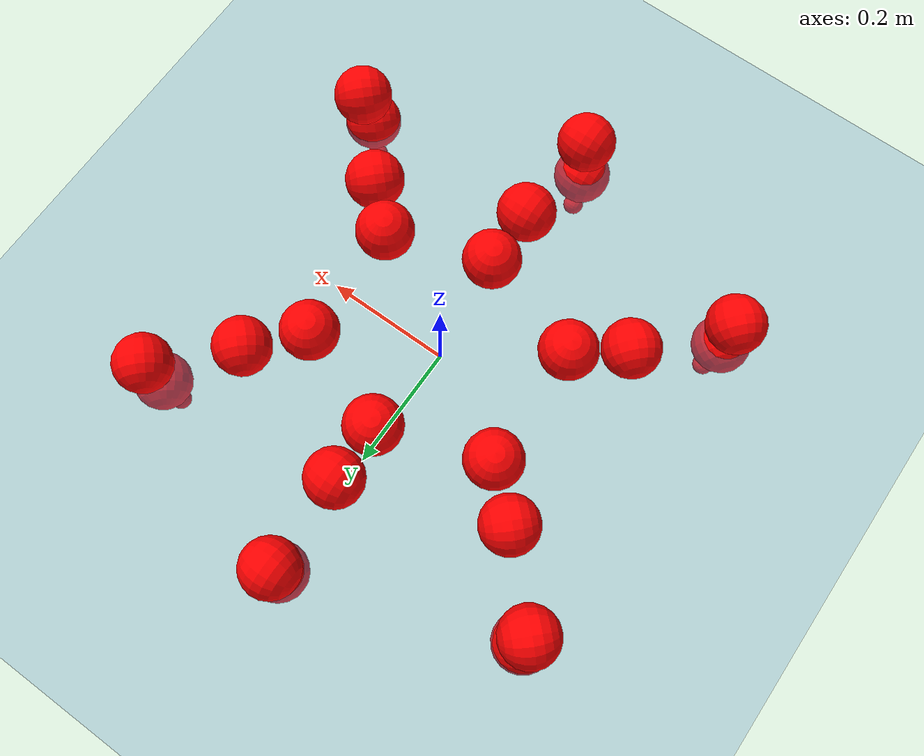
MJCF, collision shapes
<mujoco model="Golem">
  <compiler angle="radian" assetdir="assets" balanceinertia="true" inertiafromgeom="false"/>

  <option timestep="0.005" density="1.2" viscosity="2e-05"/>

  <size nkey="1"/>

  <visual>
    <quality shadowsize="8192"/>
    <map shadowclip="0.5"/>
  </visual>

  <default>
    <default class="/">
      <joint armature="0.01" damping="0.01" frictionloss="0.01"/>
      <geom contype="0" conaffinity="0" group="1" solref="-1000 -80"/>
      <site size="0.01 0.005 0.005" group="5"/>
      <general forcelimited="true" biastype="affine" gainprm="25" biasprm="0 -25 -0.5"/>
      <default class="visual">
        <geom type="mesh" group="2"/>
      </default>
      <default class="collision">
        <geom group="3"/>
      </default>
      <default class="foot">
        <geom size="0.01 0 0" condim="6" group="4" priority="1" solimp="0.015 1 0.01"/>
      </default>
      <default class="reward_collision_sphere">
        <geom group="5" rgba="1 0 0 1"/>
      </default>
    </default>
  </default>

  <asset>
    <texture type="skybox" colorspace="auto" name="//unnamed_texture_0" builtin="gradient" rgb1="0.95 0.95 0.95" rgb2="0.95 0.95 0.95" width="100" height="600"/>
    <texture type="2d" colorspace="auto" name="texplane" builtin="checker" rgb1="0.345 0.575 0.748" rgb2="0.345 0.575 0.748" markrgb="1 1 1" width="512" height="512"/>
    <material name="MatPlane" class="/" texture="texplane" texuniform="true" texrepeat="2 2" specular="0.9"/>
    <mesh name="body" class="/" file="body.stl" scale="0.001 0.001 0.001"/>
    <mesh name="coxa" class="/" file="coxa.stl" scale="0.001 0.001 0.001"/>
    <mesh name="femur" class="/" file="femur.stl" scale="0.001 0.001 0.001"/>
    <mesh name="tibia" class="/" file="tibia.stl" scale="0.001 0.001 0.001"/>
    <mesh name="tarsus" class="/" file="tarsus.stl" scale="0.001 0.001 0.001"/>
  </asset>

  <worldbody>
    <geom name="floor" class="/" size="100 100 0.125" type="plane" group="0" material="MatPlane"/>
    <light name="toplight_shadow" class="/" pos="0 0 5" dir="0.0990148 0.0990148 -0.990148" type="directional" ambient="0.04 0.04 0.04" diffuse="0.55 0.55 0.55" specular="0.12 0.12 0.12"/>
    <light name="toplight_fill" class="/" pos="0 0 5" dir="0.0990148 0.0990148 -0.990148" type="directional" castshadow="false" ambient="0.04 0.04 0.04" diffuse="0.3 0.3 0.3" specular="0.08 0.08 0.08"/>
    <body name="trunk" pos="0.00518796 4.1068e-05 0.00333836" quat="1 0.000392873 -0.000156151 5.01898e-05">
      <inertial pos="-0.000822712 0.000590766 0.00843205" quat="0.999014 0.00760045 -0.0225123 0.0375051" mass="5.80798" diaginertia="0.0141031 0.058256 0.00974714"/>
      <joint name="//unnamed_joint_0" type="free"/>
      <geom name="//unnamed_geom_1" class="/" pos="0 0 0.0635102" quat="1 0 0 0" type="mesh" rgba="0.9 0.9 0.9 1" mesh="body"/>
      <site name="imu" class="/" pos="0.124457 0.00613667 0.113929" size="0.011583"/>
      <camera name="track" class="/" pos="0 -2.83787 0" quat="0.707107 0.707107 0 0" mode="trackcom"/>
      <camera name="ego_camera" class="/" pos="0.138271 0 0.0992347" quat="-0.5 -0.5 0.5 0.5"/>
      <body name="coxa_RR" pos="-0.189113 -0.124245 0.0691153" quat="0.382935 -0.000445394 -0.000800017 -0.923775">
        <inertial pos="0.00156644 0.000378712 0.00244752" quat="0.999728 -0.00439796 -0.0227717 -0.00250663" mass="0.333829" diaginertia="0.0132489 0.060418 0.0102975"/>
        <joint name="coxa_joint_RR" class="/" pos="0 0 0" axis="-0.0198204 0.00185548 -0.999802" range="-3.08948 2.96271" armature="0.0132562" damping="0.00335231" frictionloss="0.0138406"/>
        <geom name="//unnamed_geom_2" class="/" type="mesh" rgba="0.2 0.2 0.2 1" mesh="coxa"/>
        <geom name="//unnamed_geom_3" class="reward_collision_sphere" size="0.0463321" pos="-0.0319087 0 0"/>
        <body name="femur_RR" pos="0.0626631 -0.0106712 -0.00934857" quat="0.499827 -0.499684 0.500531 0.499958">
          <inertial pos="0.0018513 -0.00865749 -0.0101458" quat="0.999998 -0.000997895 -0.00112132 0.00149151" mass="0.310688" diaginertia="0.0129094 0.0579294 0.00878955"/>
          <joint name="femur_joint_RR" class="/" pos="0 0 0" axis="-0.00107989 0.00164321 -0.999998" stiffness="0.00180226" range="-3.12529 3.14823" armature="0.0109774" damping="0" frictionloss="0.00560577"/>
          <geom name="//unnamed_geom_4" class="/" type="mesh" rgba="0.9 0.9 0.9 1" mesh="femur"/>
          <geom name="//unnamed_geom_5" class="reward_collision_sphere" size="0.0463321"/>
          <body name="tibia_RR" pos="-0.00301241 -0.162139 0.0102657" quat="0.000639789 0.999999 -7.72474e-05 -0.00076701">
            <inertial pos="-0.00370473 0.00921179 -0.00266441" quat="0.999968 -0.00159741 -0.00171901 0.00763112" mass="0.303221" diaginertia="0.0140315 0.0592071 0.00973108"/>
            <joint name="tibia_joint_RR" class="/" pos="0 0 0" axis="0.0109757 0.00453867 0.999929" range="-3.14206 3.14678" armature="0.0126031" damping="0" frictionloss="0.0142383"/>
            <geom name="//unnamed_geom_6" class="/" type="mesh" rgba="0.2 0.2 0.2 1" mesh="tibia"/>
            <geom name="//unnamed_geom_7" class="reward_collision_sphere" size="0.0463321"/>
            <body name="tarsus_RR" pos="0.0976849 0.002154 0.000709113" quat="1 -0.000183385 0.000775034 0.000293752">
              <inertial pos="0.0684436 0.00275036 -0.000853823" quat="0.506824 0.50097 0.484156 0.507692" mass="0.294515" diaginertia="0.0124628 0.0591069 0.0099411"/>
              <joint name="tarsus_joint_RR" class="/" pos="0 0 0" axis="-0.00315794 0.000399014 0.999995" range="-2.93877 2.92811" armature="0.0127233" damping="0" frictionloss="0.0126544"/>
              <geom name="//unnamed_geom_8" class="/" type="mesh" rgba="0.9 0.9 0.9 1" mesh="tarsus"/>
              <geom name="foot_1" class="foot" size="0.00950676" pos="0.119126 0 0" quat="0 -0.707107 0 0.707107"/>
              <geom name="//unnamed_geom_10" class="reward_collision_sphere" size="0.0463321"/>
              <geom name="//unnamed_geom_11" class="reward_collision_sphere" size="0.0173745" pos="0.11434 0 0"/>
              <site name="foot_1" class="foot" pos="0.119126 0 0" quat="0 -0.707107 0 0.707107" size="0.011583"/>
            </body>
          </body>
        </body>
      </body>
      <body name="coxa_RM" pos="0.00878395 -0.188162 0.0656004" quat="0.707816 0.000702113 -0.000586795 -0.706396">
        <inertial pos="0.00213783 0.00414159 0.00282805" quat="0.998839 0.0441866 -0.0190875 0.00197497" mass="0.287425" diaginertia="0.0123608 0.057039 0.00858402"/>
        <joint name="coxa_joint_RM" class="/" pos="0 0 0" axis="-0.000533299 -0.00297323 -0.999995" range="-3.14599 3.15549" armature="0.0121141" damping="0.0126762" frictionloss="0.0108085"/>
        <geom name="//unnamed_geom_12" class="/" type="mesh" rgba="0.2 0.2 0.2 1" mesh="coxa"/>
        <geom name="//unnamed_geom_13" class="reward_collision_sphere" size="0.0463321" pos="-0.0319087 0 0"/>
        <body name="femur_RM" pos="0.0608281 -0.000460994 0.0046708" quat="0.499423 -0.502197 0.496781 0.501582">
          <inertial pos="0.0089893 0.00380577 0.0103745" quat="0.999972 0.00521217 0.00535618 0.000548018" mass="0.281514" diaginertia="0.0133571 0.0578355 0.00927046"/>
          <joint name="femur_joint_RM" class="/" pos="0 0 0" axis="-0.0169126 0.00311461 -0.999852" range="-3.14383 2.96556" armature="0.0107056" damping="0.0171286" frictionloss="0.0162601"/>
          <geom name="//unnamed_geom_14" class="/" type="mesh" rgba="0.9 0.9 0.9 1" mesh="femur"/>
          <geom name="//unnamed_geom_15" class="reward_collision_sphere" size="0.0463321"/>
          <body name="tibia_RM" pos="0.00608495 -0.157293 -0.0101248" quat="-0.00143434 0.999999 0.000103474 -0.000578009">
            <inertial pos="0.0005821 -0.000444215 -0.00140496" quat="0.999997 0.00176061 0.000515655 0.00166798" mass="0.310422" diaginertia="0.0124219 0.0533856 0.00955701"/>
            <joint name="tibia_joint_RM" class="/" pos="0 0 0" axis="-0.0180881 -0.0399704 0.999037" stiffness="0.00481098" range="-3.17497 3.29047" armature="0.0108928" damping="0.0228208" frictionloss="0.0100786"/>
            <geom name="//unnamed_geom_16" class="/" type="mesh" rgba="0.2 0.2 0.2 1" mesh="tibia"/>
            <geom name="//unnamed_geom_17" class="reward_collision_sphere" size="0.0463321"/>
            <body name="tarsus_RM" pos="0.099391 -0.00253013 0.00863863" quat="1 3.83092e-05 -0.000305731 -0.000517413">
              <inertial pos="0.0640558 0.00215685 -0.00518066" quat="0.516372 0.500282 0.475213 0.507198" mass="0.304026" diaginertia="0.0126362 0.0564189 0.0106398"/>
              <joint name="tarsus_joint_RM" class="/" pos="0 0 0" axis="-0.00747919 -0.00201321 0.99997" stiffness="0.0170531" range="-2.9844 3.32604" armature="0.011732" damping="0" frictionloss="0.0116928"/>
              <geom name="//unnamed_geom_18" class="/" type="mesh" rgba="0.9 0.9 0.9 1" mesh="tarsus"/>
              <geom name="foot_2" class="foot" size="0.0110997" pos="0.119126 0 0" quat="0 -0.707107 0 0.707107"/>
              <geom name="//unnamed_geom_20" class="reward_collision_sphere" size="0.0463321"/>
              <geom name="//unnamed_geom_21" class="reward_collision_sphere" size="0.0173745" pos="0.11434 0 0"/>
              <site name="foot_2" class="foot" pos="0.119126 0 0" quat="0 -0.707107 0 0.707107" size="0.011583"/>
            </body>
          </body>
        </body>
      </body>
      <body name="coxa_RF" pos="0.190246 -0.12047 0.0711075" quat="0.923425 -0.000828903 0.00132406 -0.383775">
        <inertial pos="-0.00150832 0.0111441 0.000335502" quat="0.999994 0.00323996 -4.42398e-05 0.00141694" mass="0.297039" diaginertia="0.0131253 0.0550263 0.00918993"/>
        <joint name="coxa_joint_RF" class="/" pos="0 0 0" axis="0.00641639 0.00148389 -0.999978" stiffness="0.00126747" range="-3.1449 3.02928" armature="0.0106868" damping="0.0359061" frictionloss="0.0108206"/>
        <geom name="//unnamed_geom_22" class="/" type="mesh" rgba="0.2 0.2 0.2 1" mesh="coxa"/>
        <geom name="//unnamed_geom_23" class="reward_collision_sphere" size="0.0463321" pos="-0.0319087 0 0"/>
        <body name="femur_RF" pos="0.0538359 0.00297478 0.00383341" quat="0.499677 -0.499404 0.500968 0.499949">
          <inertial pos="0.00132535 -0.0003521 -0.00659982" quat="0.999997 -0.0010567 -0.00216983 0.000321015" mass="0.318855" diaginertia="0.0134378 0.0618977 0.00896811"/>
          <joint name="femur_joint_RF" class="/" pos="0 0 0" axis="0.00683623 0.00350384 -0.99997" stiffness="0.00373803" range="-3.31422 3.14139" armature="0.0121671" damping="0.015141" frictionloss="0.0150078"/>
          <geom name="//unnamed_geom_24" class="/" type="mesh" rgba="0.9 0.9 0.9 1" mesh="femur"/>
          <geom name="//unnamed_geom_25" class="reward_collision_sphere" size="0.0463321"/>
          <body name="tibia_RF" pos="0.00541652 -0.153052 -0.00279464" quat="-0.000718174 1 0.000354163 -0.000483968">
            <inertial pos="-0.0052425 0.00317788 0.000412595" quat="0.998835 -0.0292123 -0.0374762 0.00845596" mass="0.288792" diaginertia="0.0140469 0.060338 0.00946232"/>
            <joint name="tibia_joint_RF" class="/" pos="0 0 0" axis="0.0188415 -0.0254623 0.999498" stiffness="0.00199333" range="-3.13501 3.14396" armature="0.0119169" damping="0" frictionloss="0.010561"/>
            <geom name="//unnamed_geom_26" class="/" type="mesh" rgba="0.2 0.2 0.2 1" mesh="tibia"/>
            <geom name="//unnamed_geom_27" class="reward_collision_sphere" size="0.0463321"/>
            <body name="tarsus_RF" pos="0.0833769 -8.70951e-05 0.0112107" quat="0.999998 -0.000692264 -0.00170634 -0.000472628">
              <inertial pos="0.0616899 0.00750805 -0.000975517" quat="0.501495 0.500255 0.502547 0.495676" mass="0.352784" diaginertia="0.0139524 0.0634077 0.00936767"/>
              <joint name="tarsus_joint_RF" class="/" pos="0 0 0" axis="-0.0349397 -0.00059246 0.999389" range="-3.01656 3.14366" armature="0.0116022" damping="0" frictionloss="0.0120092"/>
              <geom name="//unnamed_geom_28" class="/" type="mesh" rgba="0.9 0.9 0.9 1" mesh="tarsus"/>
              <geom name="foot_3" class="foot" size="0.0118324" pos="0.119126 0 0" quat="0 -0.707107 0 0.707107"/>
              <geom name="//unnamed_geom_30" class="reward_collision_sphere" size="0.0463321"/>
              <geom name="//unnamed_geom_31" class="reward_collision_sphere" size="0.0173745" pos="0.11434 0 0"/>
              <site name="foot_3" class="foot" pos="0.119126 0 0" quat="0 -0.707107 0 0.707107" size="0.011583"/>
            </body>
          </body>
        </body>
      </body>
      <body name="coxa_LR" pos="-0.191483 0.117915 0.0581921" quat="0.383969 8.37116e-05 0.000475609 0.923346">
        <inertial pos="-0.000323918 -9.02034e-05 -0.0074314" quat="0.999966 0.000977354 -0.00110175 0.00809895" mass="0.307515" diaginertia="0.0134548 0.0552837 0.0105449"/>
        <joint name="coxa_joint_LR" class="/" pos="0 0 0" axis="-0.00394799 0.00697724 -0.999968" stiffness="0.0298669" range="-3.08101 3.11524" armature="0.0128221" damping="0.0394194" frictionloss="0.0168458"/>
        <geom name="//unnamed_geom_32" class="/" type="mesh" rgba="0.2 0.2 0.2 1" mesh="coxa"/>
        <geom name="//unnamed_geom_33" class="reward_collision_sphere" size="0.0463321" pos="-0.0319087 0 0"/>
        <body name="femur_LR" pos="0.0644824 0.00530413 0.000890221" quat="0.499914 -0.499985 0.500048 0.500052">
          <inertial pos="-0.00815148 0.00231222 -0.00578451" quat="0.999973 -0.000345643 -0.00119625 -0.00722004" mass="0.345266" diaginertia="0.0130254 0.0565752 0.00925271"/>
          <joint name="femur_joint_LR" class="/" pos="0 0 0" axis="0.0174556 -0.0065347 0.999826" range="-2.93723 3.31221" armature="0.0167798" damping="0.0235722" frictionloss="0.0125723"/>
          <geom name="//unnamed_geom_34" class="/" type="mesh" rgba="0.9 0.9 0.9 1" mesh="femur"/>
          <geom name="//unnamed_geom_35" class="reward_collision_sphere" size="0.0463321"/>
          <body name="tibia_LR" pos="-0.00602847 -0.154946 -0.00157635" quat="0.000245529 0.999999 -0.00167413 -0.000181334">
            <inertial pos="-0.00353564 0.00611675 -0.000311499" quat="0.999995 -0.000131064 -0.00258041 0.00175001" mass="0.278865" diaginertia="0.0132973 0.051067 0.00994267"/>
            <joint name="tibia_joint_LR" class="/" pos="0 0 0" axis="0.011085 0.0370222 -0.999253" stiffness="0.0181243" range="-3.1121 3.28512" armature="0.0125035" damping="0" frictionloss="0.0123889"/>
            <geom name="//unnamed_geom_36" class="/" type="mesh" rgba="0.2 0.2 0.2 1" mesh="tibia"/>
            <geom name="//unnamed_geom_37" class="reward_collision_sphere" size="0.0463321"/>
            <body name="tarsus_LR" pos="0.0834585 0.00494991 0.00478428" quat="0.99999 -0.004119 0.00102491 -0.00114996">
              <inertial pos="0.0710232 0.00682683 0.000584532" quat="0.501584 0.50116 0.497813 0.499434" mass="0.311722" diaginertia="0.0132393 0.0622086 0.00897607"/>
              <joint name="tarsus_joint_LR" class="/" pos="0 0 0" axis="-0.000120351 0.000191976 -1" stiffness="0.0227489" range="-3.17574 3.17914" armature="0.0103076" damping="0.0186685" frictionloss="0.00692631"/>
              <geom name="//unnamed_geom_38" class="/" type="mesh" rgba="0.9 0.9 0.9 1" mesh="tarsus"/>
              <geom name="foot_4" class="foot" size="0.0123812" pos="0.119126 0 0" quat="0.707107 0 -0.707107 0"/>
              <geom name="//unnamed_geom_40" class="reward_collision_sphere" size="0.0463321"/>
              <geom name="//unnamed_geom_41" class="reward_collision_sphere" size="0.0173745" pos="0.11434 0 0"/>
              <site name="foot_4" class="foot" pos="0.119126 0 0" quat="0.707107 0 -0.707107 0" size="0.011583"/>
            </body>
          </body>
        </body>
      </body>
      <body name="coxa_LM" pos="0.00162481 0.189228 0.067523" quat="0.706357 -0.000450436 -0.000404969 0.707856">
        <inertial pos="-0.00776938 0.00089009 -0.00112164" quat="0.999974 0.00293459 -0.00248339 0.00617222" mass="0.338593" diaginertia="0.0129323 0.0628538 0.0105812"/>
        <joint name="coxa_joint_LM" class="/" pos="0 0 0" axis="0.0158571 0.00443827 -0.999864" range="-3.11157 3.12246" armature="0.0124617" damping="0.0228348" frictionloss="0.014088"/>
        <geom name="//unnamed_geom_42" class="/" type="mesh" rgba="0.2 0.2 0.2 1" mesh="coxa"/>
        <geom name="//unnamed_geom_43" class="reward_collision_sphere" size="0.0463321" pos="-0.0319087 0 0"/>
        <body name="femur_LM" pos="0.0615789 -0.000530547 -0.00650194" quat="0.499984 -0.500002 0.500016 0.499998">
          <inertial pos="-0.00469307 -2.21443e-05 0.00353999" quat="0.999987 -4.17441e-05 0.0041037 0.00306481" mass="0.29545" diaginertia="0.014423 0.052544 0.00813747"/>
          <joint name="femur_joint_LM" class="/" pos="0 0 0" axis="0.0365244 -0.028777 0.998918" stiffness="0.0163674" range="-3.31796 3.19383" armature="0.0112012" damping="0.0602692" frictionloss="0.0114092"/>
          <geom name="//unnamed_geom_44" class="/" type="mesh" rgba="0.9 0.9 0.9 1" mesh="femur"/>
          <geom name="//unnamed_geom_45" class="reward_collision_sphere" size="0.0463321"/>
          <body name="tibia_LM" pos="0.00381838 -0.153775 0.002533" quat="0.000400604 1 -0.000127804 0.000312729">
            <inertial pos="0.0089713 -9.0066e-05 -0.000575163" quat="0.999986 0.00282326 -0.00163805 0.00413668" mass="0.320084" diaginertia="0.0138542 0.0602537 0.00935774"/>
            <joint name="tibia_joint_LM" class="/" pos="0 0 0" axis="0.000545199 -0.000280507 -1" range="-3.15071 3.19335" armature="0.014729" damping="0" frictionloss="0.0179206"/>
            <geom name="//unnamed_geom_46" class="/" type="mesh" rgba="0.2 0.2 0.2 1" mesh="tibia"/>
            <geom name="//unnamed_geom_47" class="reward_collision_sphere" size="0.0463321"/>
            <body name="tarsus_LM" pos="0.0845159 -0.00170721 0.00117325" quat="1 -0.000294669 0.000428958 2.53516e-05">
              <inertial pos="0.0704214 0.00039735 0.00461885" quat="0.48436 0.523952 0.510635 0.479711" mass="0.309456" diaginertia="0.0142543 0.0574875 0.0100283"/>
              <joint name="tarsus_joint_LM" class="/" pos="0 0 0" axis="0.0032952 -0.00326385 -0.999989" range="-3.26257 3.13743" armature="0.0109137" damping="0" frictionloss="0.0125406"/>
              <geom name="//unnamed_geom_48" class="/" type="mesh" rgba="0.9 0.9 0.9 1" mesh="tarsus"/>
              <geom name="foot_5" class="foot" size="0.00679931" pos="0.119126 0 0" quat="0.707107 0 -0.707107 0"/>
              <geom name="//unnamed_geom_50" class="reward_collision_sphere" size="0.0463321"/>
              <geom name="//unnamed_geom_51" class="reward_collision_sphere" size="0.0173745" pos="0.11434 0 0"/>
              <site name="foot_5" class="foot" pos="0.119126 0 0" quat="0.707107 0 -0.707107 0" size="0.011583"/>
            </body>
          </body>
        </body>
      </body>
      <body name="coxa_LF" pos="0.188638 0.11801 0.0636229" quat="0.923893 0.00054358 0.000768515 0.38265">
        <inertial pos="2.6556e-05 0.0100094 0.0020261" quat="0.999195 0.0235527 0.0321591 0.00443788" mass="0.267895" diaginertia="0.0115426 0.0497994 0.0082961"/>
        <joint name="coxa_joint_LF" class="/" pos="0 0 0" axis="-0.019276 -0.0093505 -0.99977" stiffness="0.0295074" range="-3.25645 3.15252" armature="0.00971418" damping="0" frictionloss="0.0156774"/>
        <geom name="//unnamed_geom_52" class="/" type="mesh" rgba="0.2 0.2 0.2 1" mesh="coxa"/>
        <geom name="//unnamed_geom_53" class="reward_collision_sphere" size="0.0463321" pos="-0.0319087 0 0"/>
        <body name="femur_LF" pos="0.0713807 0.00518277 -0.00796059" quat="0.500029 -0.499998 0.499957 0.500017">
          <inertial pos="0.00186485 -0.00483959 0.00780836" quat="1 9.36089e-05 -3.83186e-05 0.000263655" mass="0.294989" diaginertia="0.012691 0.0542478 0.00983601"/>
          <joint name="femur_joint_LF" class="/" pos="0 0 0" axis="-0.00134383 -0.00144564 0.999998" stiffness="0.0536632" range="-3.14409 3.14821" armature="0.00877332" damping="0.02044" frictionloss="0.0123264"/>
          <geom name="//unnamed_geom_54" class="/" type="mesh" rgba="0.9 0.9 0.9 1" mesh="femur"/>
          <geom name="//unnamed_geom_55" class="reward_collision_sphere" size="0.0463321"/>
          <body name="tibia_LF" pos="0.001526 -0.148846 0.00166808" quat="-0.000639735 1 0.000468861 -0.000322513">
            <inertial pos="-0.00884979 -0.00889796 -0.0104817" quat="0.999981 0.00366923 0.00476148 0.00111663" mass="0.316831" diaginertia="0.0142498 0.055431 0.00857849"/>
            <joint name="tibia_joint_LF" class="/" pos="0 0 0" axis="0.00369101 0.0105211 -0.999938" range="-3.24437 3.31625" armature="0.0113906" damping="0.0164446" frictionloss="0.01431"/>
            <geom name="//unnamed_geom_56" class="/" type="mesh" rgba="0.2 0.2 0.2 1" mesh="tibia"/>
            <geom name="//unnamed_geom_57" class="reward_collision_sphere" size="0.0463321"/>
            <body name="tarsus_LF" pos="0.0986671 -0.00477738 -0.00127216" quat="1 -0.000410518 -0.000235806 -0.000189335">
              <inertial pos="0.0689376 0.000793844 -0.00881862" quat="0.495417 0.515279 0.472745 0.515327" mass="0.315186" diaginertia="0.0125274 0.0593981 0.00856901"/>
              <joint name="tarsus_joint_LF" class="/" pos="0 0 0" axis="0.000102239 -0.00114857 -0.999999" range="-2.99408 3.32363" armature="0.00922151" damping="0.0105641" frictionloss="0.0093643"/>
              <geom name="//unnamed_geom_58" class="/" type="mesh" rgba="0.9 0.9 0.9 1" mesh="tarsus"/>
              <geom name="foot_6" class="foot" size="0.00946192" pos="0.119126 0 0" quat="0.707107 0 -0.707107 0"/>
              <geom name="//unnamed_geom_60" class="reward_collision_sphere" size="0.0463321"/>
              <geom name="//unnamed_geom_61" class="reward_collision_sphere" size="0.0173745" pos="0.11434 0 0"/>
              <site name="foot_6" class="foot" pos="0.119126 0 0" quat="0.707107 0 -0.707107 0" size="0.011583"/>
            </body>
          </body>
        </body>
      </body>
    </body>
  </worldbody>

  <contact>
    <pair class="/" geom1="floor" geom2="foot_1" name="//unnamed_contact_0"/>
    <pair class="/" geom1="floor" geom2="foot_2" name="//unnamed_contact_1"/>
    <pair class="/" geom1="floor" geom2="foot_3" name="//unnamed_contact_2"/>
    <pair class="/" geom1="floor" geom2="foot_4" name="//unnamed_contact_3"/>
    <pair class="/" geom1="floor" geom2="foot_5" name="//unnamed_contact_4"/>
    <pair class="/" geom1="floor" geom2="foot_6" name="//unnamed_contact_5"/>
  </contact>

  <actuator>
    <general name="coxa_joint_RR" class="/" joint="coxa_joint_RR" forcerange="-8.41421 8.41421" gainprm="21.4294" biasprm="0 -21.4294 -0.568768"/>
    <general name="femur_joint_RR" class="/" joint="femur_joint_RR" forcerange="-8.94798 8.94798" gainprm="21.4294" biasprm="0 -21.4294 -0.568768"/>
    <general name="tibia_joint_RR" class="/" joint="tibia_joint_RR" forcerange="-8.27267 8.27267" gainprm="21.4294" biasprm="0 -21.4294 -0.568768"/>
    <general name="tarsus_joint_RR" class="/" joint="tarsus_joint_RR" forcerange="-9.004 9.004" gainprm="21.4294" biasprm="0 -21.4294 -0.568768"/>
    <general name="coxa_joint_RM" class="/" joint="coxa_joint_RM" forcerange="-7.89013 7.89013" gainprm="21.4294" biasprm="0 -21.4294 -0.568768"/>
    <general name="femur_joint_RM" class="/" joint="femur_joint_RM" forcerange="-8.95316 8.95316" gainprm="21.4294" biasprm="0 -21.4294 -0.568768"/>
    <general name="tibia_joint_RM" class="/" joint="tibia_joint_RM" forcerange="-8.52588 8.52588" gainprm="21.4294" biasprm="0 -21.4294 -0.568768"/>
    <general name="tarsus_joint_RM" class="/" joint="tarsus_joint_RM" forcerange="-10.3943 10.3943" gainprm="21.4294" biasprm="0 -21.4294 -0.568768"/>
    <general name="coxa_joint_RF" class="/" joint="coxa_joint_RF" forcerange="-7.8889 7.8889" gainprm="21.4294" biasprm="0 -21.4294 -0.568768"/>
    <general name="femur_joint_RF" class="/" joint="femur_joint_RF" forcerange="-8.49485 8.49485" gainprm="21.4294" biasprm="0 -21.4294 -0.568768"/>
    <general name="tibia_joint_RF" class="/" joint="tibia_joint_RF" forcerange="-8.29034 8.29034" gainprm="21.4294" biasprm="0 -21.4294 -0.568768"/>
    <general name="tarsus_joint_RF" class="/" joint="tarsus_joint_RF" forcerange="-8.50804 8.50804" gainprm="21.4294" biasprm="0 -21.4294 -0.568768"/>
    <general name="coxa_joint_LR" class="/" joint="coxa_joint_LR" forcerange="-8.89263 8.89263" gainprm="21.4294" biasprm="0 -21.4294 -0.568768"/>
    <general name="femur_joint_LR" class="/" joint="femur_joint_LR" forcerange="-10.8119 10.8119" gainprm="21.4294" biasprm="0 -21.4294 -0.568768"/>
    <general name="tibia_joint_LR" class="/" joint="tibia_joint_LR" forcerange="-8.76831 8.76831" gainprm="21.4294" biasprm="0 -21.4294 -0.568768"/>
    <general name="tarsus_joint_LR" class="/" joint="tarsus_joint_LR" forcerange="-8.26676 8.26676" gainprm="21.4294" biasprm="0 -21.4294 -0.568768"/>
    <general name="coxa_joint_LM" class="/" joint="coxa_joint_LM" forcerange="-7.92214 7.92214" gainprm="21.4294" biasprm="0 -21.4294 -0.568768"/>
    <general name="femur_joint_LM" class="/" joint="femur_joint_LM" forcerange="-9.3908 9.3908" gainprm="21.4294" biasprm="0 -21.4294 -0.568768"/>
    <general name="tibia_joint_LM" class="/" joint="tibia_joint_LM" forcerange="-8.38624 8.38624" gainprm="21.4294" biasprm="0 -21.4294 -0.568768"/>
    <general name="tarsus_joint_LM" class="/" joint="tarsus_joint_LM" forcerange="-7.17185 7.17185" gainprm="21.4294" biasprm="0 -21.4294 -0.568768"/>
    <general name="coxa_joint_LF" class="/" joint="coxa_joint_LF" forcerange="-8.73685 8.73685" gainprm="21.4294" biasprm="0 -21.4294 -0.568768"/>
    <general name="femur_joint_LF" class="/" joint="femur_joint_LF" forcerange="-6.63252 6.63252" gainprm="21.4294" biasprm="0 -21.4294 -0.568768"/>
    <general name="tibia_joint_LF" class="/" joint="tibia_joint_LF" forcerange="-8.60754 8.60754" gainprm="21.4294" biasprm="0 -21.4294 -0.568768"/>
    <general name="tarsus_joint_LF" class="/" joint="tarsus_joint_LF" forcerange="-11.8816 11.8816" gainprm="21.4294" biasprm="0 -21.4294 -0.568768"/>
  </actuator>

  <sensor>
    <gyro site="imu" name="imu_angular_velocity"/>
    <velocimeter site="imu" name="imu_linear_velocity"/>
    <framelinvel objtype="site" objname="foot_1" name="foot_1_global_linear_velocity"/>
    <framelinvel objtype="site" objname="foot_2" name="foot_2_global_linear_velocity"/>
    <framelinvel objtype="site" objname="foot_3" name="foot_3_global_linear_velocity"/>
    <framelinvel objtype="site" objname="foot_4" name="foot_4_global_linear_velocity"/>
    <framelinvel objtype="site" objname="foot_5" name="foot_5_global_linear_velocity"/>
    <framelinvel objtype="site" objname="foot_6" name="foot_6_global_linear_velocity"/>
  </sensor>

  <keyframe>
    <key name="home" qpos="0 0 0.1457 1 0 0 0 0 0 0 0 0 0 0 0 0 0 0 0 0 0 0 0 0 0 0 0 0 0 0 0"/>
  </keyframe>
</mujoco>
